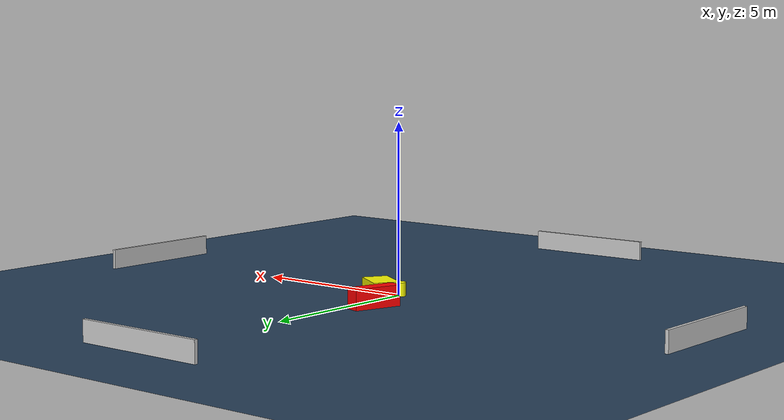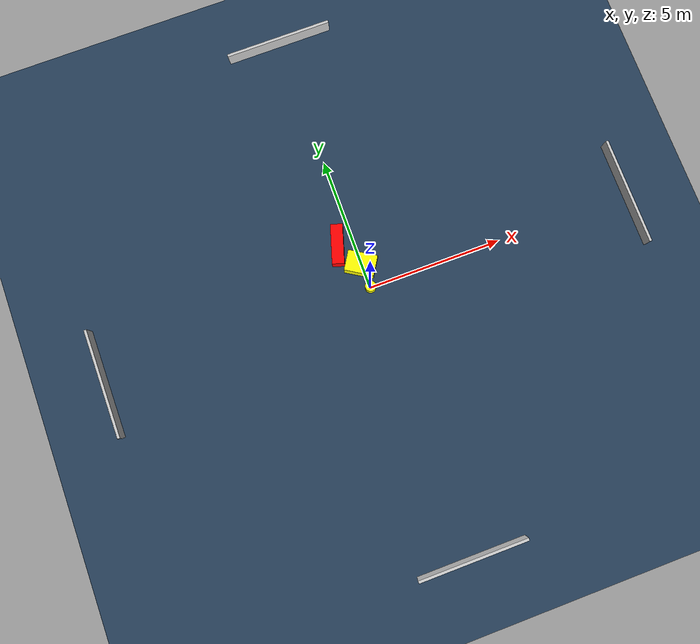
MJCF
<?xml version="1.0" ?>
<mujoco model="generated_environment">
  <option timestep="0.01" integrator="RK4" cone="elliptic"/>
  <default>
    <geom density="1"/>
  </default>
  <asset>
    <texture builtin="gradient" height="3072" name="skybox" rgb1="0.3 0.5 0.7" rgb2="0 0 0" type="skybox" width="512"/>
    <texture builtin="checker" height="300" name="groundplane" rgb1="0.2 0.3 0.4" rgb2="0.1 0.2 0.3" type="2d" width="300"/>
    <material name="groundplane" reflectance="0.2" texrepeat="5 5" texture="groundplane"/>
  </asset>
  <worldbody>
    <light dir="0 0 -1" directional="true" pos="0 0 1.5"/>
    <geom condim="3" friction="0.5 0.005 0.001" material="groundplane" name="floor" pos="0 0 0" size="0 0 0.05" type="plane"/>
    <body name="walls">
      <geom name="wall_1" condim="4" pos="-10.0 0.0 0.3" rgba="0.800000011920929 0.800000011920929 0.800000011920929 1.0" size="0.05 2.0 0.3" type="box"/>
      <geom name="wall_2" condim="4" pos="10.0 0.0 0.3" rgba="0.800000011920929 0.800000011920929 0.800000011920929 1.0" size="0.05 2.0 0.3" type="box"/>
      <geom name="wall_3" condim="4" pos="0.0 -10.0 0.3" rgba="0.800000011920929 0.800000011920929 0.800000011920929 1.0" size="2.0 0.05 0.3" type="box"/>
      <geom name="wall_4" condim="4" pos="0.0 10.0 0.3" rgba="0.800000011920929 0.800000011920929 0.800000011920929 1.0" size="2.0 0.05 0.3" type="box"/>
    </body>
    <body name="robot">
      <joint name="joint_x" type="slide" pos="0 0 0" axis="1 0 0"/>
      <joint name="joint_y" type="slide" pos="0 0 0" axis="0 1 0"/>
      <geom name="robot" type="cylinder" pos="0.0 0.0 0.2" size="0.2 0.2 0.0" mass="5.0" friction="1.0 0.005 0.0001" condim="4" rgba="1.0 1.0 0.0 1.0"/>
    </body>
    <body name="obstacle_1_movable">
      <geom name="obstacle_1_movable" condim="4" pos="-0.04174258428893774 0.8818359878730531 0.3" euler="0 0 238.03923282479158" friction="0.0 0.005 0.001" rgba="1.0 1.0 0.0 1.0" size="0.3762737696554618 0.5388027182427542 0.3" type="box" mass="0.1"/>
      <joint type="free"/>
    </body>
    <body name="obstacle_2_static">
      <geom name="obstacle_2_static" condim="4" pos="-0.599663483392141 1.8267884866380528 0.3" euler="0 0 72.79384051148668" friction="0.0 0.005 0.001" rgba="1.0 0.0 0.0 1.0" size="0.7260840142415952 0.22228564204579412 0.3" type="box"/>
    </body>
  </worldbody>
  <actuator>
    <motor name="actuator_x" joint="joint_x" gear="1" ctrlrange="-1 1"/>
    <motor name="actuator_y" joint="joint_y" gear="1" ctrlrange="-1 1"/>
  </actuator>
</mujoco>
